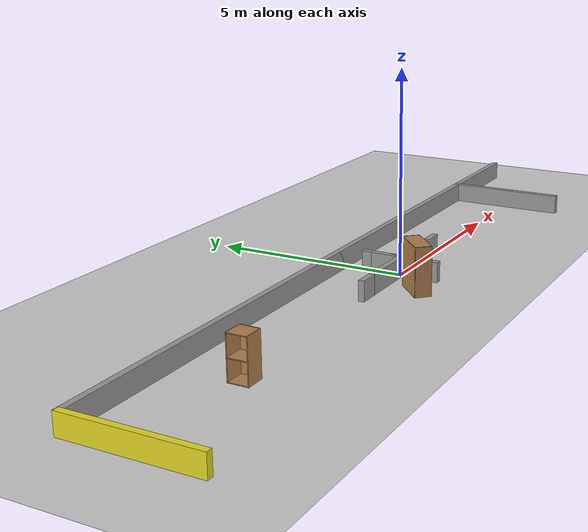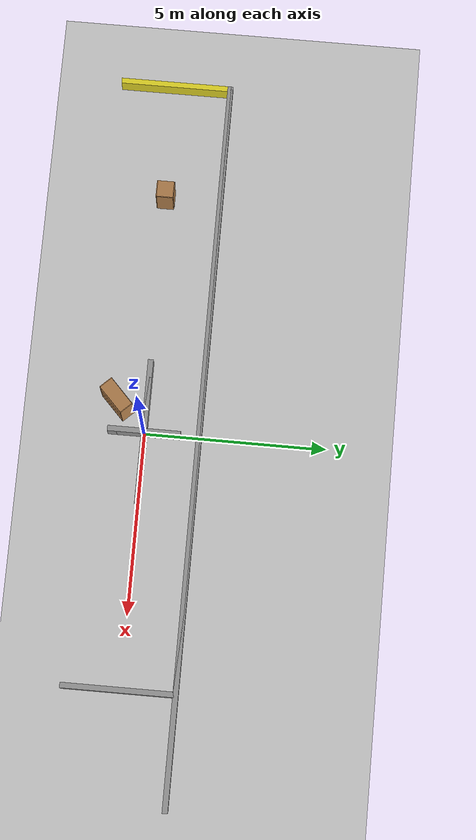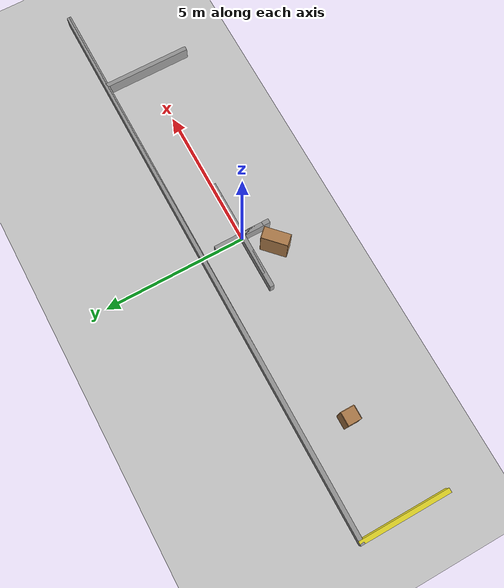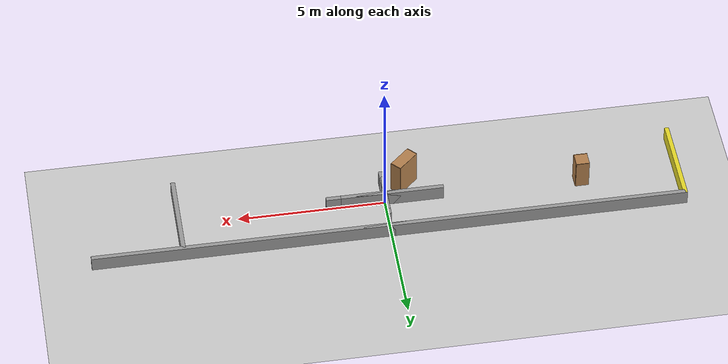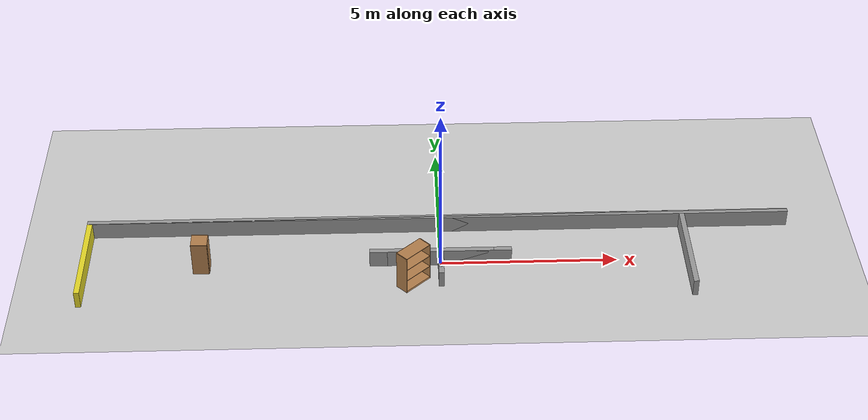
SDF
<sdf version="1.6">
 <world name="default">
  <model name="ground_plane">
   <static>1</static>
   <link name="link">
    <collision name="collision">
     <geometry><plane><normal>0 0 1</normal><size>100 100</size></plane></geometry>
     <surface><friction><ode><mu>100</mu><mu2>50</mu2></ode></friction></surface>
    </collision>
    <visual name="visual">
     <cast_shadows>0</cast_shadows>
     <geometry><plane><normal>0 0 1</normal><size>100 100</size></plane></geometry>
     <material>
      <script><uri>file://media/materials/scripts/gazebo.material</uri><name>Gazebo/Grey</name></script>
     </material>
    </visual>
   </link>
  </model>
  <gravity>0 0 -9.8</gravity>
  <magnetic_field>6e-06 2.3e-05 -4.2e-05</magnetic_field>
  <atmosphere type="adiabatic"/>
  <physics name="default_physics" default="0" type="ode">
   <max_step_size>0.001</max_step_size>
   <real_time_factor>1</real_time_factor>
   <real_time_update_rate>1000</real_time_update_rate>
  </physics>
  <scene><ambient>0.4 0.4 0.4 1</ambient><background>0.7 0.7 0.7 1</background><shadows>1</shadows></scene>
  <audio><device>default</device></audio>
  <spherical_coordinates>
   <surface_model>EARTH_WGS84</surface_model>
   <latitude_deg>0</latitude_deg>
   <longitude_deg>0</longitude_deg>
   <elevation>0</elevation>
   <heading_deg>0</heading_deg>
  </spherical_coordinates>
  <model name="square_area">
   <link name="Wall_0">
    <collision name="Wall_0_Collision">
     <geometry><box><size>20.15 0.15 0.5</size></box></geometry>
     <pose>0 -1.5 0.25 0 -0 0</pose>
    </collision>
    <visual name="Wall_0_Visual">
     <pose>0 -1.5 0.25 0 -0 0</pose>
     <geometry><box><size>20.15 0.15 0.5</size></box></geometry>
     <material>
      <script><uri>file://media/materials/scripts/gazebo.material</uri><name>Gazebo/Grey</name></script>
      <ambient>1 1 1 1</ambient>
     </material>
     <meta><layer>0</layer></meta>
    </visual>
    <pose>0 0 0 0 -0 3.14159</pose>
   </link>
   <link name="Wall_1">
    <collision name="Wall_1_Collision">
     <geometry><box><size>3.15 0.15 0.5</size></box></geometry>
     <pose>0 7 0.25 0 -0 0</pose>
    </collision>
    <visual name="Wall_1_Visual">
     <pose>0 7 0.25 0 -0 0</pose>
     <geometry><box><size>3.15 0.15 0.5</size></box></geometry>
     <material>
      <script><uri>file://media/materials/scripts/gazebo.material</uri><name>Gazebo/Yellow</name></script>
      <ambient>1 1 1 1</ambient>
     </material>
     <meta><layer>0</layer></meta>
    </visual>
    <pose>-3 0 0 0 -0 1.5708</pose>
   </link>
   <link name="Wall_2">
    <collision name="Wall_2_Collision">
     <geometry><box><size>20.15 0.15 0.5</size></box></geometry>
     <pose>0 -1.5 0.25 0 -0 0</pose>
    </collision>
    <visual name="Wall_2_Visual">
     <pose>0 -1.5 0.25 0 -0 0</pose>
     <geometry><box><size>20.15 0.15 0.5</size></box></geometry>
     <material>
      <script><uri>file://media/materials/scripts/gazebo.material</uri><name>Gazebo/Grey</name></script>
      <ambient>1 1 1 1</ambient>
     </material>
     <meta><layer>0</layer></meta>
    </visual>
    <pose>0 3 0 0 -0 0</pose>
   </link>
   <link name="Wall_3">
    <collision name="Wall_3_Collision">
     <geometry><box><size>3.15 0.15 0.5</size></box></geometry>
     <pose>0 7 1.25 0 -0 0</pose>
    </collision>
    <visual name="Wall_3_Visual">
     <pose>0 7 0.25 0 -0 0</pose>
     <geometry><box><size>3.15 0.15 0.5</size></box></geometry>
     <material>
      <script><uri>file://media/materials/scripts/gazebo.material</uri><name>Gazebo/Grey</name></script>
      <ambient>1 1 1 1</ambient>
     </material>
     <meta><layer>0</layer></meta>
    </visual>
    <pose>0 0 0 0 -0 -1.5708</pose>
   </link>
   <static>1</static>
  </model>
  <model name="traps">
   <link name="trap_0">
    <collision name="trap_0_Collision">
     <geometry><box><size>4 0.15 0.5</size></box></geometry>
     <pose>0 0 0.25 0 -0 0</pose>
    </collision>
    <visual name="trap_0_Visual">
     <pose>0 0 0.25 0 -0 0</pose>
     <geometry><box><size>4 0.15 0.5</size></box></geometry>
     <material>
      <script><uri>file://media/materials/scripts/gazebo.material</uri><name>Gazebo/Grey</name></script>
      <ambient>1 1 1 1</ambient>
     </material>
     <meta><layer>0</layer></meta>
    </visual>
    <pose>0 0 0 0 -0 3.14159</pose>
   </link>
   <link name="trap_1">
    <collision name="trap_1_Collision">
     <geometry><box><size>1.5 0.15 0.5</size></box></geometry>
     <pose>0 0 0.25 0 -0 0</pose>
    </collision>
    <visual name="trap_1_Visual">
     <pose>0 0  0.25 0 -0 0</pose>
     <geometry><box><size>1.5 0.15 0.5</size></box></geometry>
     <material>
      <script><uri>file://media/materials/scripts/gazebo.material</uri><name>Gazebo/Grey</name></script>
      <ambient>1 1 1 1</ambient>
     </material>
     <meta><layer>0</layer></meta>
    </visual>
    <pose>0 0 0 0 -0 1.5708</pose>
   </link>
   <link name="trap_2">
    <collision name="trap_2_Collision">
     <geometry><box><size>3 0.15 0.5</size></box></geometry>
     <pose>0 0 0.25 0 -0 0</pose>
    </collision>
    <visual name="trap_2_Visual">
     <pose>0 0 0.25 0 -0 0</pose>
     <geometry><box><size>3 0.15 0.5</size></box></geometry>
     <material>
      <script><uri>file://media/materials/scripts/gazebo.material</uri><name>Gazebo/Grey</name></script>
      <ambient>1 1 1 1</ambient>
     </material>
     <meta><layer>0</layer></meta>
    </visual>
   </link>
   <link name="trap_3">
    <collision name="trap_3_Collision">
     <geometry><box><size>2 0.15 0.5</size></box></geometry>
     <pose>0 0 1.25 0 -0 0</pose>
    </collision>
    <visual name="trap_3_Visual">
     <pose>0 0  0.25 0 -0 0</pose>
     <geometry><box><size>2 0.15 0.5</size></box></geometry>
     <material>
      <script><uri>file://media/materials/scripts/gazebo.material</uri><name>Gazebo/Grey</name></script>
      <ambient>1 1 1 1</ambient>
     </material>
     <meta><layer>0</layer></meta>
    </visual>
    <pose>0 0 0 0 -0 -1.5708</pose>
   </link>
   <static>1</static>
  </model>
  <model name="bookshelf">
   <static>1</static>
   <link name="link">
    <inertial><mass>1</mass></inertial>
    <collision name="back">
     <pose>0 0.005 0.6 0 -0 0</pose>
     <geometry><box><size>0.9 0.01 1.2</size></box></geometry>
    </collision>
    <visual name="visual1">
     <pose>0 0.005 0.6 0 -0 0</pose>
     <geometry><box><size>0.9 0.01 1.2</size></box></geometry>
     <material>
      <script><uri>file://media/materials/scripts/gazebo.material</uri><name>Gazebo/Wood</name></script>
     </material>
    </visual>
    <collision name="left_side">
     <pose>0.45 -0.195 0.6 0 -0 0</pose>
     <geometry><box><size>0.02 0.4 1.2</size></box></geometry>
    </collision>
    <visual name="visual2">
     <pose>0.45 -0.195 0.6 0 -0 0</pose>
     <geometry><box><size>0.02 0.4 1.2</size></box></geometry>
     <material>
      <script><uri>file://media/materials/scripts/gazebo.material</uri><name>Gazebo/Wood</name></script>
     </material>
    </visual>
    <collision name="right_side">
     <pose>-0.45 -0.195 0.6 0 -0 0</pose>
     <geometry><box><size>0.02 0.4 1.2</size></box></geometry>
    </collision>
    <visual name="visual3">
     <pose>-0.45 -0.195 0.6 0 -0 0</pose>
     <geometry><box><size>0.02 0.4 1.2</size></box></geometry>
     <material>
      <script><uri>file://media/materials/scripts/gazebo.material</uri><name>Gazebo/Wood</name></script>
     </material>
    </visual>
    <collision name="bottom">
     <pose>0 -0.195 0.03 0 -0 0</pose>
     <geometry><box><size>0.88 0.4 0.06</size></box></geometry>
    </collision>
    <visual name="visual4">
     <pose>0 -0.195 0.03 0 -0 0</pose>
     <geometry><box><size>0.88 0.4 0.06</size></box></geometry>
     <material>
      <script><uri>file://media/materials/scripts/gazebo.material</uri><name>Gazebo/Wood</name></script>
     </material>
    </visual>
    <collision name="top">
     <pose>0 -0.195 1.19 0 -0 0</pose>
     <geometry><box><size>0.88 0.4 0.02</size></box></geometry>
    </collision>
    <visual name="visual5">
     <pose>0 -0.195 1.19 0 -0 0</pose>
     <geometry><box><size>0.88 0.4 0.02</size></box></geometry>
     <material>
      <script><uri>file://media/materials/scripts/gazebo.material</uri><name>Gazebo/Wood</name></script>
     </material>
    </visual>
    <collision name="low_shelf">
     <pose>0 -0.195 0.43 0 -0 0</pose>
     <geometry><box><size>0.88 0.4 0.02</size></box></geometry>
    </collision>
    <visual name="visual6">
     <pose>0 -0.195 0.43 0 -0 0</pose>
     <geometry><box><size>0.88 0.4 0.02</size></box></geometry>
     <material>
      <script><uri>file://media/materials/scripts/gazebo.material</uri><name>Gazebo/Wood</name></script>
     </material>
    </visual>
    <collision name="high_shelf">
     <pose>0 -0.195 0.8 0 -0 0</pose>
     <geometry><box><size>0.88 0.4 0.02</size></box></geometry>
    </collision>
    <visual name="visual7">
     <pose>0 -0.195 0.8 0 -0 0</pose>
     <geometry><box><size>0.88 0.4 0.02</size></box></geometry>
     <material>
      <script><uri>file://media/materials/scripts/gazebo.material</uri><name>Gazebo/Wood</name></script>
     </material>
    </visual>
   </link>
   <pose>-0.910542 -0.658146 0 0 -0 0.759329</pose>
  </model>
  <model name="cabinet">
   <static>1</static>
   <link name="cabinet_bottom_plate">
    <inertial>
     <pose>0 0 -1 0 -0 0</pose>
     <inertia><ixx>2.05</ixx><ixy>0</ixy><ixz>0</ixz><iyy>2.05</iyy><iyz>0</iyz><izz>2.05</izz></inertia>
     <mass>25</mass>
    </inertial>
    <collision name="cabinet_bottom_plate_geom">
     <pose>0 0 0.01 0 -0 0</pose>
     <geometry><box><size>0.45 0.45 0.02</size></box></geometry>
    </collision>
    <visual name="cabinet_bottom_plate_geom_visual">
     <pose>0 0 0.01 0 -0 0</pose>
     <geometry><box><size>0.45 0.45 0.02</size></box></geometry>
     <material>
      <script><uri>file://media/materials/scripts/gazebo.material</uri><name>Gazebo/Wood</name></script>
     </material>
    </visual>
    <collision name="cabinet_bottom_plate_geom_cabinet_back_plate">
     <pose>0.235 0 0.51 0 -0 0</pose>
     <geometry><box><size>0.02 0.45 1.02</size></box></geometry>
    </collision>
    <visual name="cabinet_bottom_plate_geom_cabinet_back_plate_visual">
     <pose>0.235 0 0.51 0 -0 0</pose>
     <geometry><box><size>0.02 0.45 1.02</size></box></geometry>
     <material>
      <script><uri>file://media/materials/scripts/gazebo.material</uri><name>Gazebo/Wood</name></script>
     </material>
    </visual>
    <collision name="cabinet_bottom_plate_geom_cabinet_left_plate">
     <pose>0 0.235 0.51 0 -0 0</pose>
     <geometry><box><size>0.45 0.02 1.02</size></box></geometry>
    </collision>
    <visual name="cabinet_bottom_plate_geom_cabinet_left_plate_visual">
     <pose>0 0.235 0.51 0 -0 0</pose>
     <geometry><box><size>0.45 0.02 1.02</size></box></geometry>
     <material>
      <script><uri>file://media/materials/scripts/gazebo.material</uri><name>Gazebo/Wood</name></script>
     </material>
    </visual>
    <collision name="cabinet_bottom_plate_geom_cabinet_middle_plate">
     <pose>0 0 0.51 0 -0 0</pose>
     <geometry><box><size>0.45 0.45 0.02</size></box></geometry>
    </collision>
    <visual name="cabinet_bottom_plate_geom_cabinet_middle_plate_visual">
     <pose>0 0 0.51 0 -0 0</pose>
     <geometry><box><size>0.45 0.45 0.02</size></box></geometry>
     <material>
      <script><uri>file://media/materials/scripts/gazebo.material</uri><name>Gazebo/Wood</name></script>
     </material>
    </visual>
    <collision name="cabinet_bottom_plate_geom_cabinet_right_plate">
     <pose>0 -0.235 0.51 0 -0 0</pose>
     <geometry><box><size>0.45 0.02 1.02</size></box></geometry>
    </collision>
    <visual name="cabinet_bottom_plate_geom_cabinet_right_plate_visual">
     <pose>0 -0.235 0.51 0 -0 0</pose>
     <geometry><box><size>0.45 0.02 1.02</size></box></geometry>
     <material>
      <script><uri>file://media/materials/scripts/gazebo.material</uri><name>Gazebo/Wood</name></script>
     </material>
    </visual>
    <collision name="cabinet_bottom_plate_geom_cabinet_top_plate">
     <pose>0 0 1.01 0 -0 0</pose>
     <geometry><box><size>0.45 0.45 0.02</size></box></geometry>
    </collision>
    <visual name="cabinet_bottom_plate_geom_cabinet_top_plate_visual">
     <pose>0 0 1.01 0 -0 0</pose>
     <geometry><box><size>0.45 0.45 0.02</size></box></geometry>
     <material>
      <script><uri>file://media/materials/scripts/gazebo.material</uri><name>Gazebo/Wood</name></script>
     </material>
    </visual>
   </link>
   <pose>-6.73004 -0.025011 0 0 -0 0</pose>
  </model>
  <light name="user_point_light_0" type="point">
   <pose>0.002484 -0.070725 1 0 -0 0</pose>
   <diffuse>0.5 0.5 0.5 1</diffuse>
   <specular>0.1 0.1 0.1 1</specular>
   <attenuation>
    <range>20</range>
    <constant>0.5</constant>
    <linear>0.01</linear>
    <quadratic>0.001</quadratic>
   </attenuation>
   <cast_shadows>0</cast_shadows>
   <direction>0 0 -1</direction>
  </light>
 </world>
</sdf>
